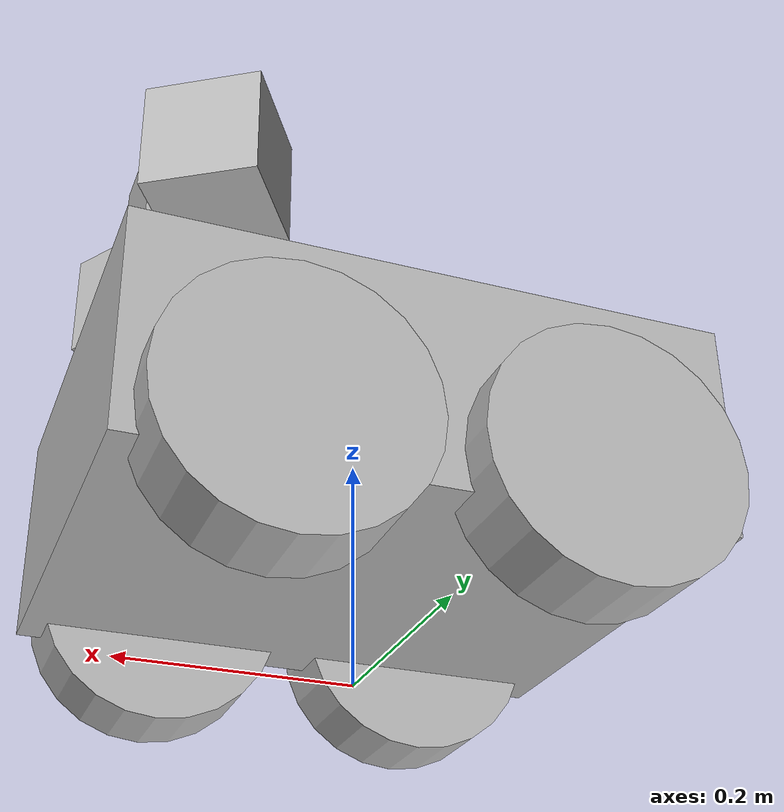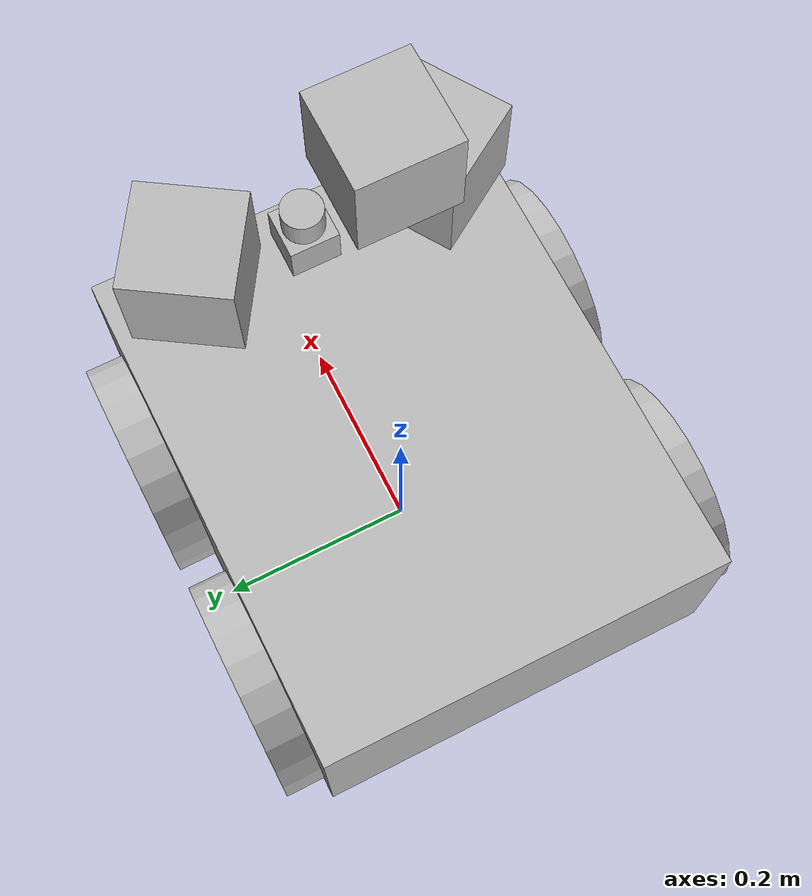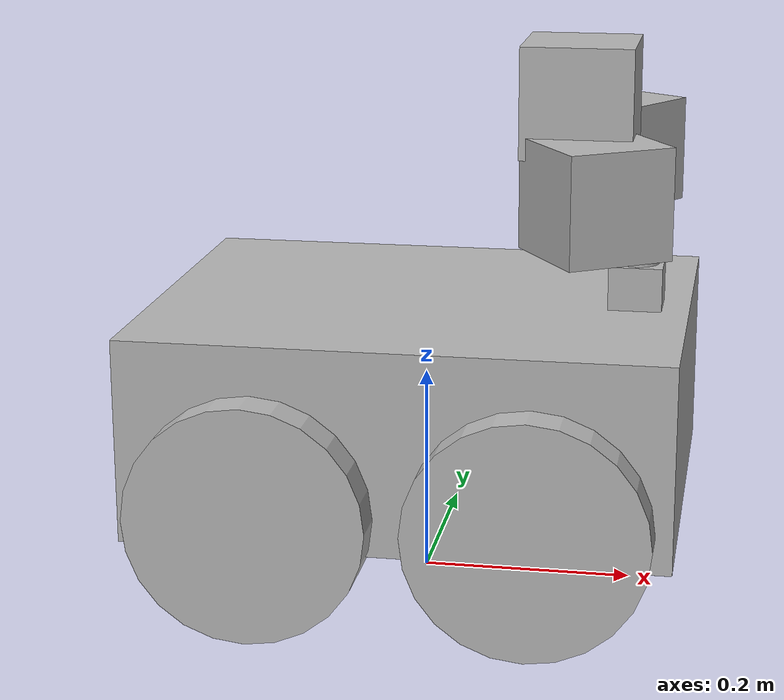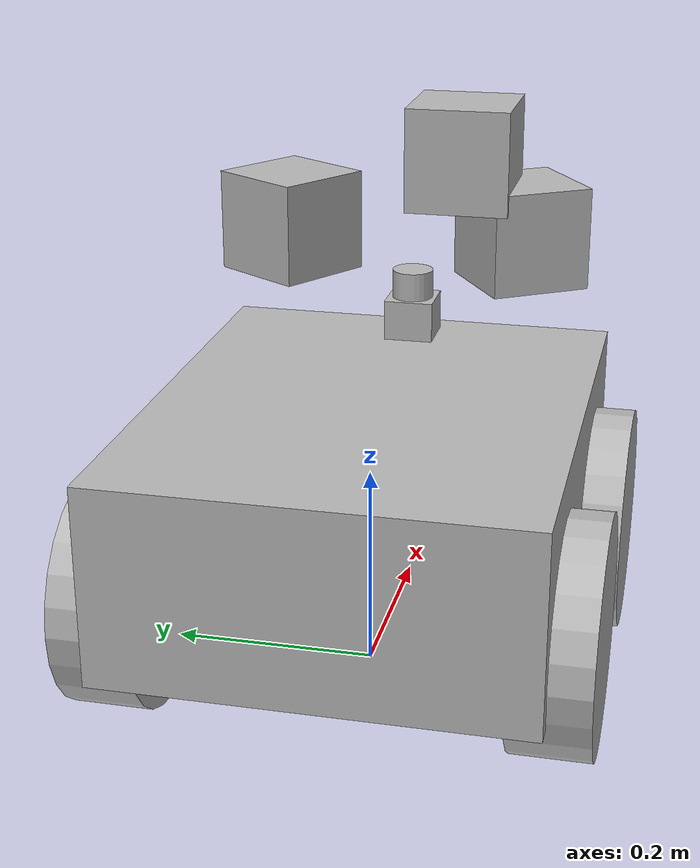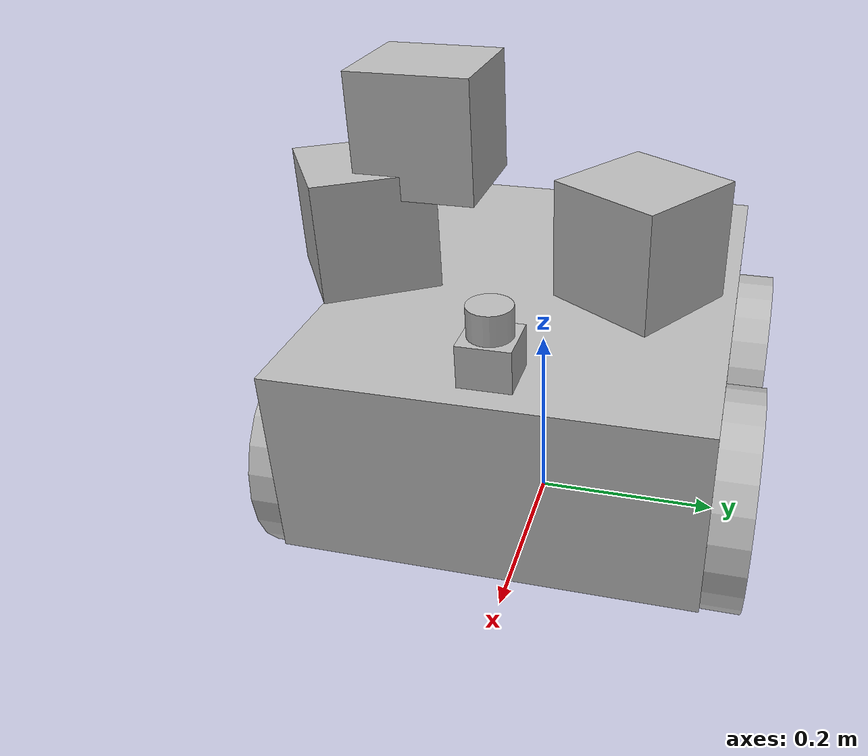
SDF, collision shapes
<?xml version='1.0'?>
<sdf version="1.4">
  <model name="pioneer3at">
    <pose>0 0 0.180 0 0 0</pose>
    <static>false</static>

    <link name="chassis">
      <inertial>
        <mass>14.0</mass>
        <inertia>
          <ixx>0.3338</ixx>
          <ixy>0.0</ixy>
          <ixz>0.0</ixz>
          <iyy>0.4783</iyy>
          <iyz>0.0</iyz>
          <izz>0.3338</izz>
        </inertia>
      </inertial>
      <collision name="collision">
        <geometry>
          <box>
            <size>0.501 0.400 0.19</size>
          </box>
        </geometry>
      </collision>
      <visual name="visual">
        <geometry>
          <mesh>
            <uri>model://pioneer3at/meshes/chassis.dae</uri>
          </mesh>
        </geometry>
      </visual>
    </link>

    <link name="right_front_wheel">
      <pose>0.125 -0.201 -0.06 1.5707 0 0</pose>
      <collision name="collision">
        <geometry>
          <cylinder>
            <radius>0.110</radius>
            <length>0.075</length>
          </cylinder>
        </geometry>
        <surface>
          <friction>
            <ode>
              <mu>1</mu>
              <mu2>1</mu2>
              <slip1>0.5</slip1>
              <slip2>0</slip2>
            </ode>
          </friction>
        </surface>
      </collision>
      <visual name="visual">
        <geometry>
          <mesh>
            <uri>model://pioneer3at/meshes/wheel.dae</uri>
          </mesh>
        </geometry>
      </visual>
    </link>

    <link name="left_front_wheel">
      <pose>0.125 0.201 -0.06 1.5707 0 0</pose>
      <collision name="collision">
        <geometry>
          <cylinder>
            <radius>0.110</radius>
            <length>0.075</length>
          </cylinder>
        </geometry>
        <surface>
          <friction>
            <ode>
              <mu>1</mu>
              <mu2>1</mu2>
              <slip1>0.5</slip1>
              <slip2>0</slip2>
            </ode>
          </friction>
        </surface>
      </collision>
      <visual name="visual">
        <geometry>
          <mesh>
            <uri>model://pioneer3at/meshes/wheel.dae</uri>
          </mesh>
        </geometry>
      </visual>
    </link>

    <link name="right_rear_wheel">
      <pose>-0.125 -0.201 -0.06 1.5707 0 0</pose>
      <collision name="collision">
        <geometry>
          <cylinder>
            <radius>0.110</radius>
            <length>0.075</length>
          </cylinder>
        </geometry>
        <surface>
          <friction>
            <ode>
              <mu>1</mu>
              <mu2>1</mu2>
              <slip1>0.5</slip1>
              <slip2>0</slip2>
            </ode>
          </friction>
        </surface>
      </collision>
      <visual name="visual">
        <geometry>
          <mesh>
            <uri>model://pioneer3at/meshes/wheel.dae</uri>
          </mesh>
        </geometry>
      </visual>
    </link>

    <link name="left_rear_wheel">
      <pose>-0.125 0.201 -0.06 1.5707 0 0</pose>
      <collision name="collision">
        <geometry>
          <cylinder>
            <radius>0.110</radius>
            <length>0.075</length>
          </cylinder>
        </geometry>
        <surface>
          <friction>
            <ode>
              <mu>1</mu>
              <mu2>1</mu2>
              <slip1>0.5</slip1>
              <slip2>0</slip2>
            </ode>
          </friction>
        </surface>
      </collision>
      <visual name="visual">
        <geometry>
          <mesh>
            <uri>model://pioneer3at/meshes/wheel.dae</uri>
          </mesh>
        </geometry>
      </visual>
    </link>

    <joint type="revolute" name="right_front">
      <pose>0 0 0 0 0 0</pose>
      <child>right_front_wheel</child>
      <parent>chassis</parent>
      <axis>
        <xyz>0 1 0</xyz>
      </axis>
    </joint>
    <joint type="revolute" name="right_rear">
      <pose>0 0 0 0 0 0</pose>
      <child>right_rear_wheel</child>
      <parent>chassis</parent>
      <axis>
        <xyz>0 1 0</xyz>
      </axis>
    </joint>
    <joint type="revolute" name="left_front">
      <pose>0 0 0 0 0 0</pose>
      <child>left_front_wheel</child>
      <parent>chassis</parent>
      <axis>
        <xyz>0 1 0</xyz>
      </axis>
    </joint>
    <joint type="revolute" name="left_rear">
      <pose>0 0 0 0 0 0</pose>
      <child>left_rear_wheel</child>
      <parent>chassis</parent>
      <axis>
        <xyz>0 1 0</xyz>
      </axis>
    </joint>

      <include>
        <uri>model://hokuyo</uri>
        <pose>0.2 0 0.13 0 0 0</pose>
      </include>
      <joint name="hokuyo_joint" type="revolute">
        <child>hokuyo::link</child>
        <parent>chassis</parent>
        <axis>
          <xyz>0 0 1</xyz>
          <limit>
            <upper>0</upper>
            <lower>0</lower>
          </limit>
        </axis>
      </joint>

      <include>
        <uri>model://camera_right</uri>
        <pose>0.1 -0.1 0.17 0 0 -1</pose>
      </include>
      <joint name="rightcam" type="revolute">
        <child>rightcamera::rightlink</child>
        <parent>chassis</parent>
        <axis>
          <xyz>1 1 1</xyz>
          <limit>
            <upper>0</upper>
            <lower>0</lower>
          </limit>
        </axis>
      </joint>

     <include>
        <uri>model://camera_left</uri>
        <pose>0.18 0.05 0.17 0 0 1</pose>
      </include>
      <joint name="leftcam" type="revolute">
        <child>leftcamera::leftlink</child>
        <parent>chassis</parent>
        <axis>
          <xyz>1 1 1</xyz>
          <limit>
            <upper>0</upper>
            <lower>0</lower>
          </limit>
        </axis>
      </joint>

      <include>
        <uri>model://camera</uri>
        <pose>0.15 -0.06 0.3 0 0 0</pose>
      </include>
      <joint name="centercam" type="revolute">
        <child>camera::link</child>
        <parent>chassis</parent>
        <axis>
          <xyz>1 1 1</xyz>
          <limit>
            <upper>0</upper>
            <lower>0</lower>
          </limit>
        </axis>
      </joint>

    <plugin name="SkidSteerDrivePlugin" filename="libSkidSteerDrivePlugin.so">
    <MaxForce>0.5</MaxForce>
    </plugin>

  </model>
</sdf>

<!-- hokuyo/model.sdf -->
<sdf version="1.5">
  <model name="hokuyo">
    <pose>0 0 0.035 0 0 0</pose>
    <link name="link">
      <inertial>
        <mass>0.1</mass>
      </inertial>
      <visual name="visual">
        <geometry>
          <mesh>
            <uri>model://../model_source/models/hokuyo/meshes/hokuyo.dae</uri>
          </mesh>
        </geometry>
      </visual>
      <collision name="collision-base">
        <pose>0 0 -0.0145 0 0 0</pose>
        <geometry>
          <box>
            <size>0.05 0.05 0.041</size>
          </box>
        </geometry>
      </collision>
      <collision name="collision-top">
        <pose>0 0 0.0205 0 0 0</pose>
        <geometry>
          <cylinder>
            <radius>0.021</radius>
            <length>0.029</length>
          </cylinder>
        </geometry>
      </collision>
      <sensor name="laser" type="ray">
        <pose>0.01 0 0.0175 0 -0 0</pose>
        <ray>
          <scan>
            <horizontal>
              <samples>640</samples>
              <resolution>1</resolution>
              <min_angle>-2.26889</min_angle>
              <max_angle>2.268899</max_angle>
            </horizontal>
          </scan>
          <range>
            <min>0.08</min>
            <max>10</max>
            <resolution>0.01</resolution>
          </range>
        </ray>
        <plugin name="laser" filename="libRayPlugin.so" />
        <always_on>1</always_on>
        <update_rate>30</update_rate>
        <visualize>true</visualize>
      </sensor>
    </link>
  </model>
</sdf>

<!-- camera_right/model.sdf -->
<sdf version="1.4">
  <model name="rightcamera">
    <link name="rightlink">
      <pose>0.05 0.05 0.05 0 0 0</pose>
      <inertial>
        <mass>0.1</mass>
      </inertial>
      <collision name="collision">
        <geometry>
          <box>
            <size>0.1 0.1 0.1</size>
          </box>
        </geometry>
      </collision>
      <visual name="visual">
        <geometry>
          <box>
            <size>0.1 0.1 0.1</size>
          </box>
        </geometry>
      </visual>
      <sensor name="camera" type="camera">
        <camera>
          <horizontal_fov>1.047</horizontal_fov>
          <image>
            <width>10</width>
            <height>4</height>
          </image>
          <clip>
            <near>0.1</near>
            <far>100</far>
          </clip>
        </camera>
        <always_on>1</always_on>
        <update_rate>30</update_rate>
        <visualize>true</visualize>
      </sensor>
    </link>
  </model>
</sdf>

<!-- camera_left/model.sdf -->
<sdf version="1.4">
  <model name="leftcamera">
    <link name="leftlink">
      <pose>0.05 0.05 0.05 0 0 0</pose>
      <inertial>
        <mass>0.1</mass>
      </inertial>
      <collision name="collision">
        <geometry>
          <box>
            <size>0.1 0.1 0.1</size>
          </box>
        </geometry>
      </collision>
      <visual name="visual">
        <geometry>
          <box>
            <size>0.1 0.1 0.1</size>
          </box>
        </geometry>
      </visual>
      <sensor name="camera" type="camera">
        <camera>
          <horizontal_fov>1.047</horizontal_fov>
          <image>
            <width>10</width>
            <height>4</height>
          </image>
          <clip>
            <near>0.1</near>
            <far>100</far>
          </clip>
        </camera>
        <always_on>1</always_on>
        <update_rate>30</update_rate>
        <visualize>true</visualize>
      </sensor>
    </link>
  </model>
</sdf>

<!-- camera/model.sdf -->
<sdf version="1.5">
  <model name="camera">
    <pose>0 0 0.05 0 0 0</pose>
    <link name="link">
      <inertial>
        <mass>0.1</mass>
        <inertia>
          <ixx>0.000166667</ixx>
          <iyy>0.000166667</iyy>
          <izz>0.000166667</izz>
        </inertia>
      </inertial>
      <collision name="collision">
        <geometry>
          <box>
            <size>0.1 0.1 0.1</size>
          </box>
        </geometry>
      </collision>
      <visual name="visual">
        <geometry>
          <box>
            <size>0.1 0.1 0.1</size>
          </box>
        </geometry>
      </visual>
      <sensor name="camera" type="camera">
        <camera>
          <horizontal_fov>1.047</horizontal_fov>
          <image>
            <width>320</width>
            <height>240</height>
          </image>
          <clip>
            <near>0.1</near>
            <far>100</far>
          </clip>
        </camera>
        <always_on>1</always_on>
        <update_rate>30</update_rate>
        <visualize>true</visualize>
      </sensor>
    </link>
  </model>
</sdf>
